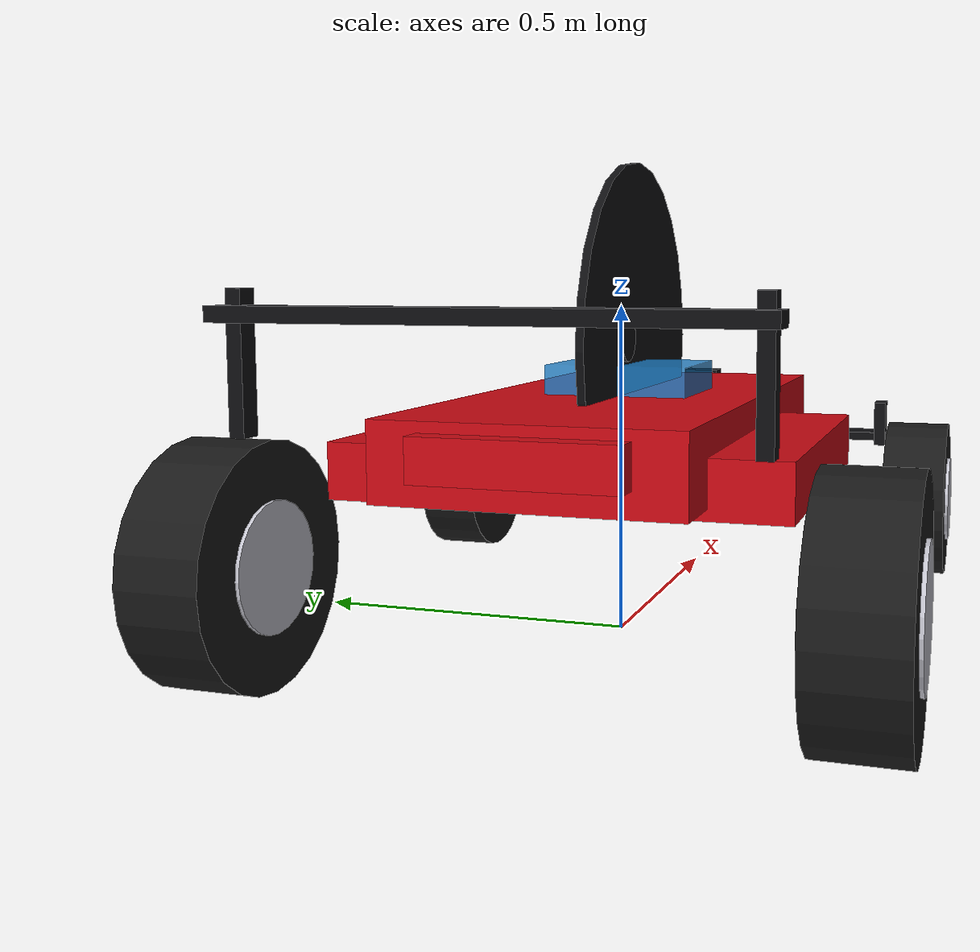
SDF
<?xml version="1.0"?>
<!-- 差速小车 + 传感器（坐标系：base_link 为前-左-上 FLU） -->
<sdf version="1.9">
  <model name="simple_car">

    <plugin filename="gz-sim-diff-drive-system" name="gz::sim::systems::DiffDrive">
      <left_joint>left_rear_wheel_joint</left_joint>
      <right_joint>right_rear_wheel_joint</right_joint>
      <wheel_separation>0.84</wheel_separation>
      <wheel_radius>0.16</wheel_radius>
      <odom_publish_frequency>50</odom_publish_frequency>
      <topic>/cmd_vel</topic>
      <odom_topic>/sensors/wheel_odom</odom_topic>
      <frame_id>world</frame_id>
      <child_frame_id>base_link</child_frame_id>
      <publish_odom_tf>false</publish_odom_tf>
    </plugin>

    <link name="base_link">
      <pose>0 0 0.22 0 0 0</pose>
      <inertial>
        <mass>20</mass>
        <inertia>
          <ixx>1.0</ixx><iyy>1.0</iyy><izz>1.0</izz>
          <ixy>0</ixy><ixz>0</ixz><iyz>0</iyz>
        </inertia>
      </inertial>
      <!-- F1 风格外观（碰撞盒不变） -->
      <visual name="monocoque">
        <pose>0.02 0 0.09 0 0 0</pose>
        <geometry><box><size>0.88 0.42 0.11</size></box></geometry>
        <material><diffuse>0.82 0.04 0.08 1</diffuse></material>
      </visual>
      <visual name="nose">
        <pose>0.52 0 0.07 0 0 0</pose>
        <geometry><box><size>0.22 0.14 0.07</size></box></geometry>
        <material><diffuse>0.82 0.04 0.08 1</diffuse></material>
      </visual>
      <visual name="sidepod_l">
        <pose>-0.05 0.24 0.06 0 0 0</pose>
        <geometry><box><size>0.55 0.16 0.08</size></box></geometry>
        <material><diffuse>0.82 0.04 0.08 1</diffuse></material>
      </visual>
      <visual name="sidepod_r">
        <pose>-0.05 -0.24 0.06 0 0 0</pose>
        <geometry><box><size>0.55 0.16 0.08</size></box></geometry>
        <material><diffuse>0.82 0.04 0.08 1</diffuse></material>
      </visual>
      <visual name="engine_cover">
        <pose>-0.28 0 0.10 0 0 0</pose>
        <geometry><box><size>0.35 0.28 0.06</size></box></geometry>
        <material><diffuse>0.82 0.04 0.08 1</diffuse></material>
      </visual>
      <visual name="front_wing_main">
        <pose>0.58 0 0.025 0 0 0</pose>
        <geometry><box><size>0.06 0.72 0.015</size></box></geometry>
        <material><diffuse>0.06 0.06 0.07 1</diffuse></material>
      </visual>
      <visual name="front_wing_ep_l">
        <pose>0.56 0.34 0.05 0 0 0</pose>
        <geometry><box><size>0.04 0.02 0.08</size></box></geometry>
        <material><diffuse>0.06 0.06 0.07 1</diffuse></material>
      </visual>
      <visual name="front_wing_ep_r">
        <pose>0.56 -0.34 0.05 0 0 0</pose>
        <geometry><box><size>0.04 0.02 0.08</size></box></geometry>
        <material><diffuse>0.06 0.06 0.07 1</diffuse></material>
      </visual>
      <visual name="rear_wing_main">
        <pose>-0.54 0 0.28 0 0 0</pose>
        <geometry><box><size>0.05 0.68 0.02</size></box></geometry>
        <material><diffuse>0.06 0.06 0.07 1</diffuse></material>
      </visual>
      <visual name="rear_wing_ep_l">
        <pose>-0.52 0.32 0.22 0 0 0</pose>
        <geometry><box><size>0.03 0.02 0.18</size></box></geometry>
        <material><diffuse>0.06 0.06 0.07 1</diffuse></material>
      </visual>
      <visual name="rear_wing_ep_r">
        <pose>-0.52 -0.32 0.22 0 0 0</pose>
        <geometry><box><size>0.03 0.02 0.18</size></box></geometry>
        <material><diffuse>0.06 0.06 0.07 1</diffuse></material>
      </visual>
      <visual name="halo">
        <pose>0.08 0 0.22 1.5708 0 0</pose>
        <geometry><cylinder><radius>0.28</radius><length>0.012</length></cylinder></geometry>
        <material><diffuse>0.06 0.06 0.07 1</diffuse></material>
      </visual>
      <visual name="cockpit">
        <pose>0.05 0 0.16 0 0 0</pose>
        <geometry><box><size>0.18 0.22 0.06</size></box></geometry>
        <material><diffuse>0.15 0.55 0.85 0.85</diffuse></material>
      </visual>
      <collision name="body_col">
        <geometry><box><size>1.2 0.7 0.22</size></box></geometry>
      </collision>

      <!-- IMU：输出车体局部坐标系角速度与线加速度 -->
      <sensor name="imu_sensor" type="imu">
        <always_on>true</always_on>
        <update_rate>100</update_rate>
        <topic>/sensors/imu/data_raw</topic>
        <imu>
          <angular_velocity>
            <x><noise type="gaussian"><stddev>0.01</stddev></noise></x>
            <y><noise type="gaussian"><stddev>0.01</stddev></noise></y>
            <z><noise type="gaussian"><stddev>0.01</stddev></noise></z>
          </angular_velocity>
          <linear_acceleration>
            <x><noise type="gaussian"><stddev>0.05</stddev></noise></x>
            <y><noise type="gaussian"><stddev>0.05</stddev></noise></y>
            <z><noise type="gaussian"><stddev>0.05</stddev></noise></z>
          </linear_acceleration>
        </imu>
      </sensor>

      <!-- 磁力计：地磁向量，用于解算全局航向 -->
      <sensor name="mag_sensor" type="magnetometer">
        <always_on>true</always_on>
        <update_rate>50</update_rate>
        <topic>/sensors/magnetic_field</topic>
      </sensor>

      <!-- GPS -->
      <sensor name="navsat_sensor" type="navsat">
        <always_on>true</always_on>
        <update_rate>10</update_rate>
        <topic>/sensors/gps/fix</topic>
      </sensor>
    </link>

    <!-- 相机：前向安装，供 RViz / 调试可视化 -->
    <link name="camera_link">
      <pose>0.55 0 0.35 0 0 0</pose>
      <inertial><mass>0.05</mass><inertia><ixx>1e-4</ixx><iyy>1e-4</iyy><izz>1e-4</izz></inertia></inertial>
      <visual name="camera_visual">
        <geometry><box><size>0.04 0.06 0.03</size></box></geometry>
        <material><diffuse>0.06 0.06 0.07 1</diffuse></material>
      </visual>
      <sensor name="camera_sensor" type="camera">
        <always_on>true</always_on>
        <update_rate>15</update_rate>
        <topic>/sensors/camera/image_raw</topic>
        <camera>
          <horizontal_fov>1.047</horizontal_fov>
          <image><width>640</width><height>480</height><format>R8G8B8</format></image>
          <clip><near>0.1</near><far>50</far></clip>
        </camera>
      </sensor>
    </link>

    <!-- 雷达：车顶 2D 扫描 -->
    <link name="lidar_link">
      <pose>0 0 0.45 0 0 0</pose>
      <inertial><mass>0.1</mass><inertia><ixx>1e-4</ixx><iyy>1e-4</iyy><izz>1e-4</izz></inertia></inertial>
      <visual name="lidar_visual">
        <pose>0 0 0 1.5708 0 0</pose>
        <geometry><cylinder><radius>0.035</radius><length>0.025</length></cylinder></geometry>
        <material><diffuse>0.06 0.06 0.07 1</diffuse></material>
      </visual>
      <sensor name="lidar_sensor" type="gpu_lidar">
        <always_on>true</always_on>
        <update_rate>10</update_rate>
        <visualize>true</visualize>
        <topic>/sensors/lidar/scan</topic>
        <lidar>
          <scan>
            <horizontal>
              <samples>360</samples>
              <resolution>1</resolution>
              <min_angle>-3.14159</min_angle>
              <max_angle>3.14159</max_angle>
            </horizontal>
            <vertical>
              <samples>1</samples>
              <resolution>1</resolution>
              <min_angle>0</min_angle>
              <max_angle>0</max_angle>
            </vertical>
          </scan>
          <range><min>0.15</min><max>30.0</max><resolution>0.01</resolution></range>
        </lidar>
      </sensor>
    </link>

    <link name="front_left_wheel">
      <pose>0.4 0.42 0.16 0 0 0</pose>
      <inertial><mass>1</mass><inertia><ixx>0.02</ixx><iyy>0.02</iyy><izz>0.02</izz></inertia></inertial>
      <visual name="tire"><pose>0 0 0 1.5708 0 0</pose><geometry><cylinder><radius>0.13</radius><length>0.10</length></cylinder></geometry><material><diffuse>0.10 0.10 0.10 1</diffuse></material></visual>
      <visual name="rim"><pose>0 0 0 1.5708 0 0</pose><geometry><cylinder><radius>0.07</radius><length>0.11</length></cylinder></geometry><material><diffuse>0.78 0.78 0.82 1</diffuse></material></visual>
      <collision name="collision"><pose>0 0 0 1.5708 0 0</pose><geometry><cylinder><radius>0.16</radius><length>0.08</length></cylinder></geometry><surface><friction><ode><mu>0.4</mu><mu2>0.4</mu2></ode></friction></surface></collision>
    </link>
    <link name="front_right_wheel">
      <pose>0.4 -0.42 0.16 0 0 0</pose>
      <inertial><mass>1</mass><inertia><ixx>0.02</ixx><iyy>0.02</iyy><izz>0.02</izz></inertia></inertial>
      <visual name="tire"><pose>0 0 0 1.5708 0 0</pose><geometry><cylinder><radius>0.13</radius><length>0.10</length></cylinder></geometry><material><diffuse>0.10 0.10 0.10 1</diffuse></material></visual>
      <visual name="rim"><pose>0 0 0 1.5708 0 0</pose><geometry><cylinder><radius>0.07</radius><length>0.11</length></cylinder></geometry><material><diffuse>0.78 0.78 0.82 1</diffuse></material></visual>
      <collision name="collision"><pose>0 0 0 1.5708 0 0</pose><geometry><cylinder><radius>0.16</radius><length>0.08</length></cylinder></geometry><surface><friction><ode><mu>0.4</mu><mu2>0.4</mu2></ode></friction></surface></collision>
    </link>
    <link name="left_rear_wheel">
      <pose>-0.4 0.42 0.16 0 0 0</pose>
      <inertial><mass>1</mass><inertia><ixx>0.02</ixx><iyy>0.02</iyy><izz>0.02</izz></inertia></inertial>
      <visual name="tire"><pose>0 0 0 1.5708 0 0</pose><geometry><cylinder><radius>0.17</radius><length>0.12</length></cylinder></geometry><material><diffuse>0.10 0.10 0.10 1</diffuse></material></visual>
      <visual name="rim"><pose>0 0 0 1.5708 0 0</pose><geometry><cylinder><radius>0.09</radius><length>0.13</length></cylinder></geometry><material><diffuse>0.78 0.78 0.82 1</diffuse></material></visual>
      <collision name="collision"><pose>0 0 0 1.5708 0 0</pose><geometry><cylinder><radius>0.16</radius><length>0.08</length></cylinder></geometry><surface><friction><ode><mu>1.3</mu><mu2>1.3</mu2></ode></friction></surface></collision>
    </link>
    <link name="right_rear_wheel">
      <pose>-0.4 -0.42 0.16 0 0 0</pose>
      <inertial><mass>1</mass><inertia><ixx>0.02</ixx><iyy>0.02</iyy><izz>0.02</izz></inertia></inertial>
      <visual name="tire"><pose>0 0 0 1.5708 0 0</pose><geometry><cylinder><radius>0.17</radius><length>0.12</length></cylinder></geometry><material><diffuse>0.10 0.10 0.10 1</diffuse></material></visual>
      <visual name="rim"><pose>0 0 0 1.5708 0 0</pose><geometry><cylinder><radius>0.09</radius><length>0.13</length></cylinder></geometry><material><diffuse>0.78 0.78 0.82 1</diffuse></material></visual>
      <collision name="collision"><pose>0 0 0 1.5708 0 0</pose><geometry><cylinder><radius>0.16</radius><length>0.08</length></cylinder></geometry><surface><friction><ode><mu>1.3</mu><mu2>1.3</mu2></ode></friction></surface></collision>
    </link>

    <joint name="camera_joint" type="fixed"><parent>base_link</parent><child>camera_link</child></joint>
    <joint name="lidar_joint" type="fixed"><parent>base_link</parent><child>lidar_link</child></joint>
    <joint name="front_left_wheel_joint" type="revolute">
      <parent>base_link</parent><child>front_left_wheel</child>
      <axis><xyz>0 1 0</xyz><limit><lower>-1e16</lower><upper>1e16</upper></limit></axis>
    </joint>
    <joint name="front_right_wheel_joint" type="revolute">
      <parent>base_link</parent><child>front_right_wheel</child>
      <axis><xyz>0 1 0</xyz><limit><lower>-1e16</lower><upper>1e16</upper></limit></axis>
    </joint>
    <joint name="left_rear_wheel_joint" type="revolute">
      <parent>base_link</parent><child>left_rear_wheel</child>
      <axis><xyz>0 1 0</xyz><limit><lower>-1e16</lower><upper>1e16</upper></limit></axis>
    </joint>
    <joint name="right_rear_wheel_joint" type="revolute">
      <parent>base_link</parent><child>right_rear_wheel</child>
      <axis><xyz>0 1 0</xyz><limit><lower>-1e16</lower><upper>1e16</upper></limit></axis>
    </joint>

  </model>
</sdf>
